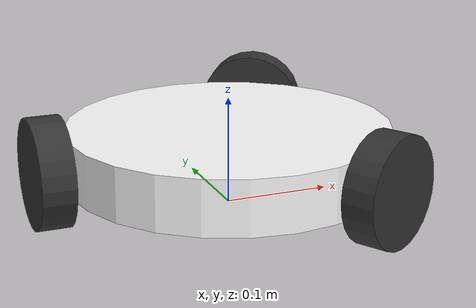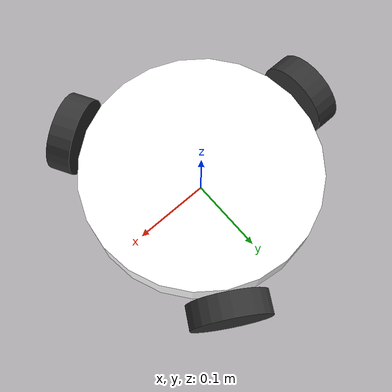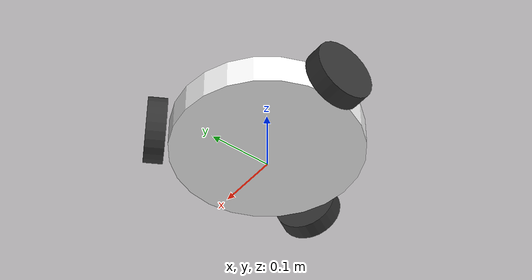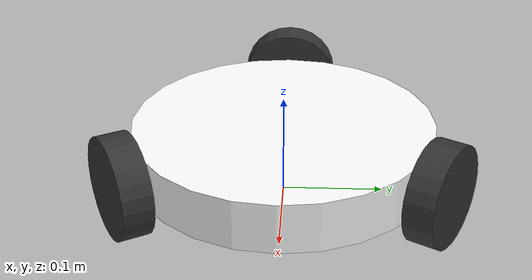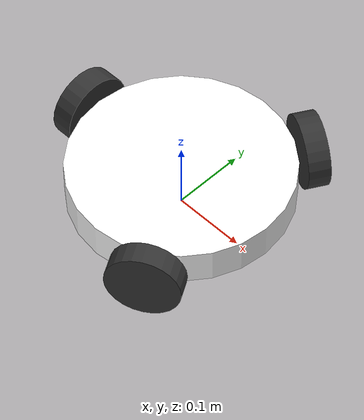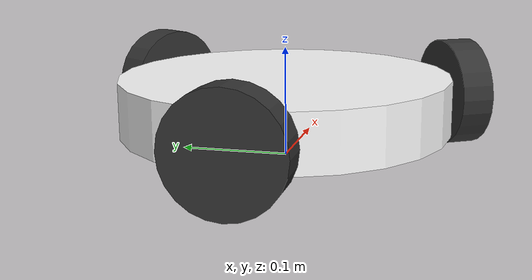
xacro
<?xml version="1.0"?>
<robot xmlns:xacro="http://www.ros.org/wiki/xacro" >

  <!-- PROPERTIES                                              -->
  <xacro:property name="PI" value="3.1415926535897931" />

  <!-- Base Chassis -->
  <xacro:property name="base_radius" value="0.15" />
  <xacro:property name="base_height" value="0.05" />
  <xacro:property name="base_mass"   value="2.5" />

  <!-- Omni Wheels -->
  <xacro:property name="wheel_radius" value="0.05" />
  <xacro:property name="wheel_width"  value="0.03" />
  <xacro:property name="wheel_mass"   value="0.2" />

  <!-- Distance from the center of the base to the wheel center -->
  <xacro:property name="wheel_offset" value="0.17" />

  <!-- MATERIALS (For RViz)                                    -->
  <material name="blue">
    <color rgba="1.0 1.0 1.0 1.0"/>
  </material>

  <material name="dark_grey">
    <color rgba="0.2 0.2 0.2 1.0"/>
  </material>

  <!-- BASE CHASSIS                                            -->
  <link name="base_footprint" />

  <joint name="base_joint" type="fixed">
    <parent link="base_footprint"/>
    <child link="base_link"/>
    <!-- Elevate the chassis so the wheels touch the ground -->
    <origin xyz="0 0 ${wheel_radius}" rpy="0 0 0"/>
  </joint>

  <link name="base_link">
    <visual>
      <geometry>
        <cylinder radius="${base_radius}" length="${base_height}"/>
      </geometry>
      <material name="blue"/>
    </visual>
    <collision>
      <geometry>
        <cylinder radius="${base_radius}" length="${base_height}"/>
      </geometry>
    </collision>
    <inertial>
      <mass value="${base_mass}"/>
      <inertia ixx="${(1/12) * base_mass * (3*base_radius*base_radius + base_height*base_height)}" ixy="0.0" ixz="0.0"
               iyy="${(1/12) * base_mass * (3*base_radius*base_radius + base_height*base_height)}" iyz="0.0"
               izz="${(1/2) * base_mass * base_radius*base_radius}" />
    </inertial>
  </link>

  <!-- Gazebo color for the base -->
  <gazebo reference="base_link">
    <material>Gazebo/Blue</material>
  </gazebo>

  <!-- OMNI WHEEL MACRO                                        -->
  <xacro:macro name="omni_wheel" params="prefix angle">
    <link name="${prefix}_wheel">
      <visual>
        <geometry>
          <cylinder radius="${wheel_radius}" length="${wheel_width}"/>
        </geometry>
        <material name="dark_grey"/>
      </visual>
      <collision>
        <geometry>
          <cylinder radius="${wheel_radius}" length="${wheel_width}"/>
        </geometry>
      </collision>
      <inertial>
        <mass value="${wheel_mass}"/>
        <inertia ixx="${(1/12) * wheel_mass * (3*wheel_radius*wheel_radius + wheel_width*wheel_width)}" ixy="0.0" ixz="0.0"
                 iyy="${(1/12) * wheel_mass * (3*wheel_radius*wheel_radius + wheel_width*wheel_width)}" iyz="0.0"
                 izz="${(1/2) * wheel_mass * wheel_radius*wheel_radius}" />
      </inertial>
    </link>

    <!-- Pitch the wheel 90 degrees (PI/2) to orient the axle radially -->
    <joint name="${prefix}_wheel_joint" type="continuous">
      <parent link="base_link"/>
      <child link="${prefix}_wheel"/>
      <origin xyz="${wheel_offset * cos(angle)} ${wheel_offset * sin(angle)} 0"
              rpy="0 ${PI/2} ${angle}"/>
      <axis xyz="0 0 1"/>
    </joint>

    <!-- Gazebo Physics & Friction Properties -->
    <gazebo reference="${prefix}_wheel">
      <mu1>1.0</mu1>
      <mu2>0.0</mu2>
      <fdir1>1 0 0</fdir1>
      <kp>1000000.0</kp>
      <kd>100.0</kd>
      <minDepth>0.001</minDepth>
      <maxVel>1.0</maxVel>
      <material>Gazebo/DarkGrey</material>
    </gazebo>
  </xacro:macro>

  <!-- WHEEL INSTANTIATIONS (120 Degrees apart)                -->

  <!-- Front Left Wheel: 60 degrees (PI/3) -->
  <xacro:omni_wheel prefix="front_left" angle="${PI/3}" />

  <!-- Back Wheel: 180 degrees (PI) -->
  <xacro:omni_wheel prefix="back" angle="${PI}" />

  <!-- Front Right Wheel: -60 degrees (-PI/3) -->
  <xacro:omni_wheel prefix="front_right" angle="${-PI/3}" />

</robot>
